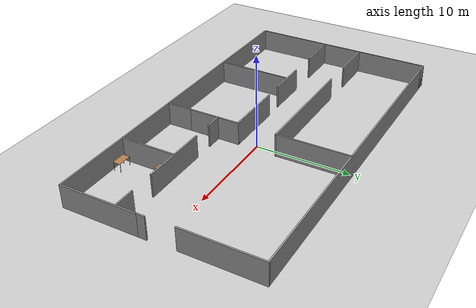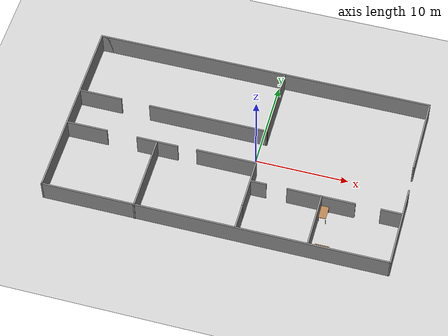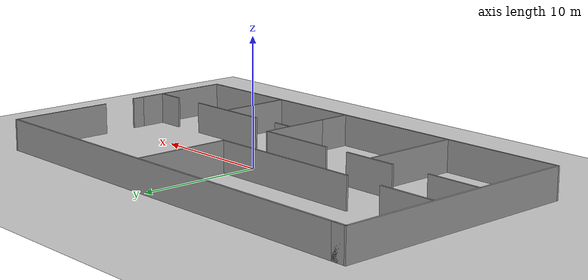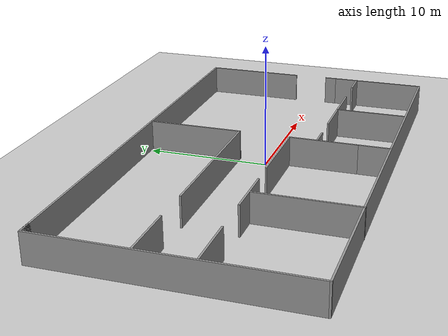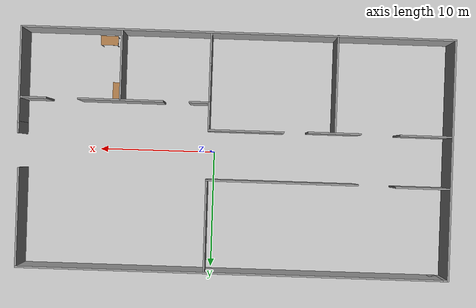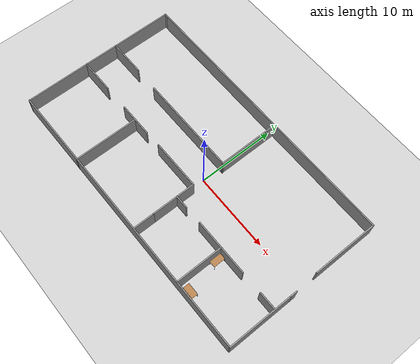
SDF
<sdf version="1.6">
 <world name="default">
  <light name="sun" type="directional">
   <pose>0 0 10 0 -0 0</pose>
   <diffuse>0.8 0.8 0.8 1</diffuse>
   <specular>0.2 0.2 0.2 1</specular>
   <attenuation>
    <range>1000</range>
    <constant>0.9</constant>
    <linear>0.01</linear>
    <quadratic>0.001</quadratic>
   </attenuation>
   <direction>-0.5 0.1 -0.9</direction>
  </light>
  <model name="ground_plane">
   <static>1</static>
   <link name="link">
    <collision name="collision">
     <geometry><plane><normal>0 0 1</normal><size>100 100</size></plane></geometry>
     <surface><friction><ode><mu>100</mu><mu2>50</mu2></ode></friction></surface>
    </collision>
    <visual name="visual">
     <cast_shadows>0</cast_shadows>
     <geometry><plane><normal>0 0 1</normal><size>100 100</size></plane></geometry>
     <material>
      <script><uri>file://media/materials/scripts/gazebo.material</uri><name>Gazebo/Grey</name></script>
     </material>
    </visual>
   </link>
  </model>
  <gravity>0 0 -9.8</gravity>
  <magnetic_field>6e-06 2.3e-05 -4.2e-05</magnetic_field>
  <atmosphere type="adiabatic"/>
  <physics name="default_physics" default="0" type="ode">
   <max_step_size>0.001</max_step_size>
   <real_time_factor>1</real_time_factor>
   <real_time_update_rate>1000</real_time_update_rate>
  </physics>
  <scene><ambient>0.4 0.4 0.4 1</ambient><background>0.7 0.7 0.7 1</background><shadows>1</shadows></scene>
  <audio><device>default</device></audio>
  <spherical_coordinates>
   <surface_model>EARTH_WGS84</surface_model>
   <latitude_deg>0</latitude_deg>
   <longitude_deg>0</longitude_deg>
   <elevation>0</elevation>
   <heading_deg>0</heading_deg>
  </spherical_coordinates>
  <model name="hospital_wall">
   <pose>-1.80512 0.03467 0 0 -0 0</pose>
   <link name="Wall_12">
    <collision name="Wall_12_Collision">
     <geometry><box><size>13 0.15 2.5</size></box></geometry>
     <pose>0 0 1.25 0 -0 0</pose>
    </collision>
    <visual name="Wall_12_Visual">
     <pose>0 0 1.25 0 -0 0</pose>
     <geometry><box><size>13 0.15 2.5</size></box></geometry>
     <material>
      <script><uri>file://media/materials/scripts/gazebo.material</uri><name>Gazebo/Grey</name></script>
      <ambient>1 1 1 1</ambient>
     </material>
     <meta><layer>0</layer></meta>
    </visual>
    <pose>-4.059 2.35553 0 0 -0 0</pose>
   </link>
   <link name="Wall_13">
    <collision name="Wall_13_Collision">
     <geometry><box><size>7.9336 0.15 2.5</size></box></geometry>
     <pose>0 0 1.25 0 -0 0</pose>
    </collision>
    <visual name="Wall_13_Visual">
     <pose>0 0 1.25 0 -0 0</pose>
     <geometry><box><size>7.9336 0.15 2.5</size></box></geometry>
     <material>
      <script><uri>file://media/materials/scripts/gazebo.material</uri><name>Gazebo/Grey</name></script>
      <ambient>1 1 1 1</ambient>
     </material>
     <meta><layer>0</layer></meta>
    </visual>
    <pose>2.32396 6.24724 0 0 -0 1.57374</pose>
   </link>
   <link name="Wall_15">
    <collision name="Wall_15_Collision">
     <geometry><box><size>4.5 0.15 2.5</size></box></geometry>
     <pose>0 0 1.25 0 -0 0</pose>
    </collision>
    <visual name="Wall_15_Visual">
     <pose>0 0 1.25 0 -0 0</pose>
     <geometry><box><size>4.5 0.15 2.5</size></box></geometry>
     <material>
      <script><uri>file://media/materials/scripts/gazebo.material</uri><name>Gazebo/Grey</name></script>
      <ambient>1 1 1 1</ambient>
     </material>
     <meta><layer>0</layer></meta>
    </visual>
    <pose>-16.1378 -1.95779 0 0 -0 0</pose>
   </link>
   <link name="Wall_18">
    <collision name="Wall_18_Collision">
     <geometry><box><size>4.5 0.15 2.5</size></box></geometry>
     <pose>0 0 1.25 0 -0 0</pose>
    </collision>
    <visual name="Wall_18_Visual">
     <pose>0 0 1.25 0 -0 0</pose>
     <geometry><box><size>4.5 0.15 2.5</size></box></geometry>
     <material>
      <script><uri>file://media/materials/scripts/gazebo.material</uri><name>Gazebo/Grey</name></script>
      <ambient>1 1 1 1</ambient>
     </material>
     <meta><layer>0</layer></meta>
    </visual>
    <pose>-8.38684 -1.96157 0 0 -0 0</pose>
   </link>
   <link name="Wall_2">
    <collision name="Wall_2_Collision">
     <geometry><box><size>36.25 0.15 2.5</size></box></geometry>
     <pose>0 0 1.25 0 -0 0</pose>
    </collision>
    <visual name="Wall_2_Visual">
     <pose>0 0 1.25 0 -0 0</pose>
     <geometry><box><size>36.25 0.15 2.5</size></box></geometry>
     <material>
      <script><uri>file://media/materials/scripts/gazebo.material</uri><name>Gazebo/Grey</name></script>
      <ambient>1 1 1 1</ambient>
     </material>
     <meta><layer>0</layer></meta>
    </visual>
    <pose>0.182659 10.1898 0 0 -0 0</pose>
   </link>
   <link name="Wall_23">
    <collision name="Wall_23_Collision">
     <geometry><box><size>6.5 0.15 2.5</size></box></geometry>
     <pose>0 0 1.25 0 -0 0</pose>
    </collision>
    <visual name="Wall_23_Visual">
     <pose>0 0 1.25 0 -0 0</pose>
     <geometry><box><size>6.5 0.15 2.5</size></box></geometry>
     <material>
      <script><uri>file://media/materials/scripts/gazebo.material</uri><name>Gazebo/Grey</name></script>
      <ambient>1 1 1 1</ambient>
     </material>
     <meta><layer>0</layer></meta>
    </visual>
    <pose>-0.875709 -1.89121 0 0 -0 0</pose>
   </link>
   <link name="Wall_24">
    <collision name="Wall_24_Collision">
     <geometry><box><size>5.75 0.15 2.5</size></box></geometry>
     <pose>0 0 1.25 0 -0 0</pose>
    </collision>
    <visual name="Wall_24_Visual">
     <pose>0 0 1.25 0 -0 0</pose>
     <geometry><box><size>5.75 0.15 2.5</size></box></geometry>
     <material>
      <script><uri>file://media/materials/scripts/gazebo.material</uri><name>Gazebo/Grey</name></script>
      <ambient>1 1 1 1</ambient>
     </material>
     <meta><layer>0</layer></meta>
    </visual>
    <pose>2.29929 -4.69121 0 0 -0 -1.5708</pose>
   </link>
   <link name="Wall_25">
    <collision name="Wall_25_Collision">
     <geometry><box><size>2.75 0.15 2.5</size></box></geometry>
     <pose>0 0 1.25 0 -0 0</pose>
    </collision>
    <visual name="Wall_25_Visual">
     <pose>0 0 1.25 0 -0 0</pose>
     <geometry><box><size>2.75 0.15 2.5</size></box></geometry>
     <material>
      <script><uri>file://media/materials/scripts/gazebo.material</uri><name>Gazebo/Grey</name></script>
      <ambient>1 1 1 1</ambient>
     </material>
     <meta><layer>0</layer></meta>
    </visual>
    <pose>2.29929 -8.79121 0 0 -0 -1.5708</pose>
   </link>
   <link name="Wall_33">
    <collision name="Wall_33_Collision">
     <geometry><box><size>8.25 0.15 2.5</size></box></geometry>
     <pose>0 0 1.25 0 -0 0</pose>
    </collision>
    <visual name="Wall_33_Visual">
     <pose>0 0 1.25 0 -0 0</pose>
     <geometry><box><size>8.25 0.15 2.5</size></box></geometry>
     <material>
      <script><uri>file://media/materials/scripts/gazebo.material</uri><name>Gazebo/Grey</name></script>
      <ambient>1 1 1 1</ambient>
     </material>
     <meta><layer>0</layer></meta>
    </visual>
    <pose>-8.42399 -6.13981 0 0 -0 -1.5708</pose>
   </link>
   <link name="Wall_35">
    <collision name="Wall_35_Collision">
     <geometry><box><size>8.5 0.15 2.5</size></box></geometry>
     <pose>0 0 1.25 0 -0 0</pose>
    </collision>
    <visual name="Wall_35_Visual">
     <pose>0 0 1.25 0 -0 0</pose>
     <geometry><box><size>8.5 0.15 2.5</size></box></geometry>
     <material>
      <script><uri>file://media/materials/scripts/gazebo.material</uri><name>Gazebo/Grey</name></script>
      <ambient>1 1 1 1</ambient>
     </material>
     <meta><layer>0</layer></meta>
    </visual>
    <pose>18.2327 6.01481 0 0 -0 -1.5708</pose>
   </link>
   <link name="Wall_37">
    <collision name="Wall_37_Collision">
     <geometry><box><size>8.25 0.15 2.5</size></box></geometry>
     <pose>0 0 1.25 0 -0 0</pose>
    </collision>
    <visual name="Wall_37_Visual">
     <pose>0 0 1.25 0 -0 0</pose>
     <geometry><box><size>8.25 0.15 2.5</size></box></geometry>
     <material>
      <script><uri>file://media/materials/scripts/gazebo.material</uri><name>Gazebo/Grey</name></script>
      <ambient>1 1 1 1</ambient>
     </material>
     <meta><layer>0</layer></meta>
    </visual>
    <pose>18.3673 -6.09412 0 0 -0 -1.5708</pose>
   </link>
   <link name="Wall_39">
    <collision name="Wall_39_Collision">
     <geometry><box><size>1 0.15 2.5</size></box></geometry>
     <pose>0 0 1.25 0 -0 0</pose>
    </collision>
    <visual name="Wall_39_Visual">
     <pose>0 0 1.25 0 -0 0</pose>
     <geometry><box><size>1 0.15 2.5</size></box></geometry>
     <material>
      <script><uri>file://media/materials/scripts/gazebo.material</uri><name>Gazebo/Grey</name></script>
      <ambient>1 1 1 1</ambient>
     </material>
     <meta><layer>0</layer></meta>
    </visual>
    <pose>18.3673 -1.61912 0 0 -0 1.5708</pose>
   </link>
   <link name="Wall_4">
    <collision name="Wall_4_Collision">
     <geometry><box><size>36.75 0.15 2.5</size></box></geometry>
     <pose>0 0 1.25 0 -0 0</pose>
    </collision>
    <visual name="Wall_4_Visual">
     <pose>0 0 1.25 0 -0 0</pose>
     <geometry><box><size>36.75 0.15 2.5</size></box></geometry>
     <material>
      <script><uri>file://media/materials/scripts/gazebo.material</uri><name>Gazebo/Grey</name></script>
      <ambient>1 1 1 1</ambient>
     </material>
     <meta><layer>0</layer></meta>
    </visual>
    <pose>-0.067341 -10.1602 0 0 -0 3.14159</pose>
   </link>
   <link name="Wall_42">
    <collision name="Wall_42_Collision">
     <geometry><box><size>1.75 0.15 2.5</size></box></geometry>
     <pose>0 0 1.25 0 -0 0</pose>
    </collision>
    <visual name="Wall_42_Visual">
     <pose>0 0 1.25 0 -0 0</pose>
     <geometry><box><size>1.75 0.15 2.5</size></box></geometry>
     <material>
      <script><uri>file://media/materials/scripts/gazebo.material</uri><name>Gazebo/Grey</name></script>
      <ambient>1 1 1 1</ambient>
     </material>
     <meta><layer>0</layer></meta>
    </visual>
    <pose>3.14625 -4.21273 0 0 -0 0</pose>
   </link>
   <link name="Wall_44">
    <collision name="Wall_44_Collision">
     <geometry><box><size>7.25 0.15 2.5</size></box></geometry>
     <pose>0 0 1.25 0 -0 0</pose>
    </collision>
    <visual name="Wall_44_Visual">
     <pose>0 0 1.25 0 -0 0</pose>
     <geometry><box><size>7.25 0.15 2.5</size></box></geometry>
     <material>
      <script><uri>file://media/materials/scripts/gazebo.material</uri><name>Gazebo/Grey</name></script>
      <ambient>1 1 1 1</ambient>
     </material>
     <meta><layer>0</layer></meta>
    </visual>
    <pose>9.81779 -4.19239 0 0 -0 0</pose>
   </link>
   <link name="Wall_46">
    <collision name="Wall_46_Collision">
     <geometry><box><size>2.25 0.15 2.5</size></box></geometry>
     <pose>0 0 1.25 0 -0 0</pose>
    </collision>
    <visual name="Wall_46_Visual">
     <pose>0 0 1.25 0 -0 0</pose>
     <geometry><box><size>2.25 0.15 2.5</size></box></geometry>
     <material>
      <script><uri>file://media/materials/scripts/gazebo.material</uri><name>Gazebo/Grey</name></script>
      <ambient>1 1 1 1</ambient>
     </material>
     <meta><layer>0</layer></meta>
    </visual>
    <pose>17.1923 -4.17205 0 0 -0 0</pose>
   </link>
   <link name="Wall_48">
    <collision name="Wall_48_Collision">
     <geometry><box><size>6 0.15 2.5</size></box></geometry>
     <pose>0 0 1.25 0 -0 0</pose>
    </collision>
    <visual name="Wall_48_Visual">
     <pose>0 0 1.25 0 -0 0</pose>
     <geometry><box><size>6 0.15 2.5</size></box></geometry>
     <material>
      <script><uri>file://media/materials/scripts/gazebo.material</uri><name>Gazebo/Grey</name></script>
      <ambient>1 1 1 1</ambient>
     </material>
     <meta><layer>0</layer></meta>
    </visual>
    <pose>9.85488 -7.17819 0 0 -0 -1.5708</pose>
   </link>
   <link name="Wall_5">
    <collision name="Wall_5_Collision">
     <geometry><box><size>20.5 0.15 2.5</size></box></geometry>
     <pose>0 0 1.25 0 -0 0</pose>
    </collision>
    <visual name="Wall_5_Visual">
     <pose>0 0 1.25 0 -0 0</pose>
     <geometry><box><size>20.5 0.15 2.5</size></box></geometry>
     <material>
      <script><uri>file://media/materials/scripts/gazebo.material</uri><name>Gazebo/Grey</name></script>
      <ambient>1 1 1 1</ambient>
     </material>
     <meta><layer>0</layer></meta>
    </visual>
    <pose>-18.3673 0.014811 0 0 -0 1.5708</pose>
   </link>
   <link name="Wall_7">
    <collision name="Wall_7_Collision">
     <geometry><box><size>1.25 0.15 2.5</size></box></geometry>
     <pose>0 0 1.25 0 -0 0</pose>
    </collision>
    <visual name="Wall_7_Visual">
     <pose>0 0 1.25 0 -0 0</pose>
     <geometry><box><size>1.25 0.15 2.5</size></box></geometry>
     <material>
      <script><uri>file://media/materials/scripts/gazebo.material</uri><name>Gazebo/Grey</name></script>
      <ambient>1 1 1 1</ambient>
     </material>
     <meta><layer>0</layer></meta>
    </visual>
    <pose>-17.8173 10.1898 0 0 -0 0</pose>
   </link>
   <link name="Wall_9">
    <collision name="Wall_9_Collision">
     <geometry><box><size>4.75 0.15 2.5</size></box></geometry>
     <pose>0 0 1.25 0 -0 0</pose>
    </collision>
    <visual name="Wall_9_Visual">
     <pose>0 0 1.25 0 -0 0</pose>
     <geometry><box><size>4.75 0.15 2.5</size></box></geometry>
     <material>
      <script><uri>file://media/materials/scripts/gazebo.material</uri><name>Gazebo/Grey</name></script>
      <ambient>1 1 1 1</ambient>
     </material>
     <meta><layer>0</layer></meta>
    </visual>
    <pose>-16.0489 2.43195 0 0 -0 0</pose>
   </link>
   <static>1</static>
  </model>
  <model name="table">
   <static>1</static>
   <link name="link">
    <collision name="surface">
     <pose>0 0 1 0 -0 0</pose>
     <geometry><box><size>1.5 0.8 0.03</size></box></geometry>
     <surface><friction><ode><mu>0.6</mu><mu2>0.6</mu2></ode></friction></surface>
    </collision>
    <visual name="visual1">
     <pose>0 0 1 0 -0 0</pose>
     <geometry><box><size>1.5 0.8 0.03</size></box></geometry>
     <material>
      <script><uri>file://media/materials/scripts/gazebo.material</uri><name>Gazebo/Wood</name></script>
     </material>
    </visual>
    <collision name="front_left_leg">
     <pose>0.68 0.38 0.5 0 -0 0</pose>
     <geometry><cylinder><radius>0.02</radius><length>1</length></cylinder></geometry>
    </collision>
    <visual name="front_left_leg">
     <pose>0.68 0.38 0.5 0 -0 0</pose>
     <geometry><cylinder><radius>0.02</radius><length>1</length></cylinder></geometry>
     <material>
      <script><uri>file://media/materials/scripts/gazebo.material</uri><name>Gazebo/Grey</name></script>
     </material>
    </visual>
    <collision name="front_right_leg">
     <pose>0.68 -0.38 0.5 0 -0 0</pose>
     <geometry><cylinder><radius>0.02</radius><length>1</length></cylinder></geometry>
    </collision>
    <visual name="front_right_leg">
     <pose>0.68 -0.38 0.5 0 -0 0</pose>
     <geometry><cylinder><radius>0.02</radius><length>1</length></cylinder></geometry>
     <material>
      <script><uri>file://media/materials/scripts/gazebo.material</uri><name>Gazebo/Grey</name></script>
     </material>
    </visual>
    <collision name="back_right_leg">
     <pose>-0.68 -0.38 0.5 0 -0 0</pose>
     <geometry><cylinder><radius>0.02</radius><length>1</length></cylinder></geometry>
    </collision>
    <visual name="back_right_leg">
     <pose>-0.68 -0.38 0.5 0 -0 0</pose>
     <geometry><cylinder><radius>0.02</radius><length>1</length></cylinder></geometry>
     <material>
      <script><uri>file://media/materials/scripts/gazebo.material</uri><name>Gazebo/Grey</name></script>
     </material>
    </visual>
    <collision name="back_left_leg">
     <pose>-0.68 0.38 0.5 0 -0 0</pose>
     <geometry><cylinder><radius>0.02</radius><length>1</length></cylinder></geometry>
    </collision>
    <visual name="back_left_leg">
     <pose>-0.68 0.38 0.5 0 -0 0</pose>
     <geometry><cylinder><radius>0.02</radius><length>1</length></cylinder></geometry>
     <material>
      <script><uri>file://media/materials/scripts/gazebo.material</uri><name>Gazebo/Grey</name></script>
     </material>
    </visual>
   </link>
   <pose>9.36177 -9.39229 0 0 -0 0</pose>
  </model>
  <model name="table_clone">
   <static>1</static>
   <link name="link">
    <collision name="surface">
     <pose>0 0 1 0 -0 0</pose>
     <geometry><box><size>1.5 0.8 0.03</size></box></geometry>
     <surface><friction><ode><mu>0.6</mu><mu2>0.6</mu2></ode></friction></surface>
    </collision>
    <visual name="visual1">
     <pose>0 0 1 0 -0 0</pose>
     <geometry><box><size>1.5 0.8 0.03</size></box></geometry>
     <material>
      <script><uri>file://media/materials/scripts/gazebo.material</uri><name>Gazebo/Wood</name></script>
     </material>
    </visual>
    <collision name="front_left_leg">
     <pose>0.68 0.38 0.5 0 -0 0</pose>
     <geometry><cylinder><radius>0.02</radius><length>1</length></cylinder></geometry>
    </collision>
    <visual name="front_left_leg">
     <pose>0.68 0.38 0.5 0 -0 0</pose>
     <geometry><cylinder><radius>0.02</radius><length>1</length></cylinder></geometry>
     <material>
      <script><uri>file://media/materials/scripts/gazebo.material</uri><name>Gazebo/Grey</name></script>
     </material>
    </visual>
    <collision name="front_right_leg">
     <pose>0.68 -0.38 0.5 0 -0 0</pose>
     <geometry><cylinder><radius>0.02</radius><length>1</length></cylinder></geometry>
    </collision>
    <visual name="front_right_leg">
     <pose>0.68 -0.38 0.5 0 -0 0</pose>
     <geometry><cylinder><radius>0.02</radius><length>1</length></cylinder></geometry>
     <material>
      <script><uri>file://media/materials/scripts/gazebo.material</uri><name>Gazebo/Grey</name></script>
     </material>
    </visual>
    <collision name="back_right_leg">
     <pose>-0.68 -0.38 0.5 0 -0 0</pose>
     <geometry><cylinder><radius>0.02</radius><length>1</length></cylinder></geometry>
    </collision>
    <visual name="back_right_leg">
     <pose>-0.68 -0.38 0.5 0 -0 0</pose>
     <geometry><cylinder><radius>0.02</radius><length>1</length></cylinder></geometry>
     <material>
      <script><uri>file://media/materials/scripts/gazebo.material</uri><name>Gazebo/Grey</name></script>
     </material>
    </visual>
    <collision name="back_left_leg">
     <pose>-0.68 0.38 0.5 0 -0 0</pose>
     <geometry><cylinder><radius>0.02</radius><length>1</length></cylinder></geometry>
    </collision>
    <visual name="back_left_leg">
     <pose>-0.68 0.38 0.5 0 -0 0</pose>
     <geometry><cylinder><radius>0.02</radius><length>1</length></cylinder></geometry>
     <material>
      <script><uri>file://media/materials/scripts/gazebo.material</uri><name>Gazebo/Grey</name></script>
     </material>
    </visual>
   </link>
   <pose>8.55297 -5.03457 0 0 0 -1.56902</pose>
  </model>
 </world>
</sdf>
